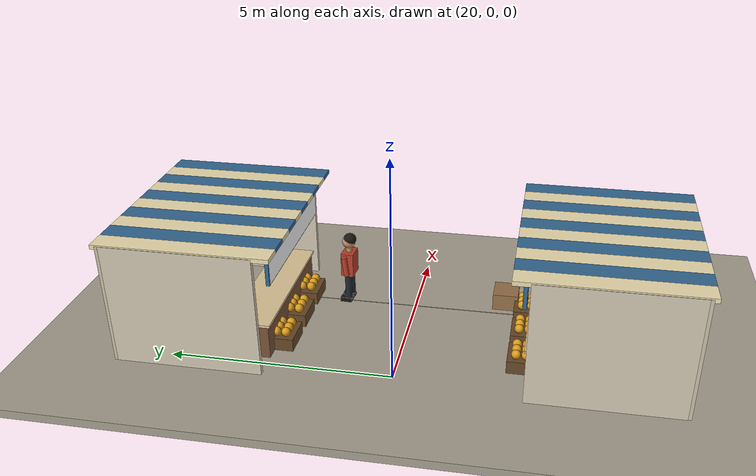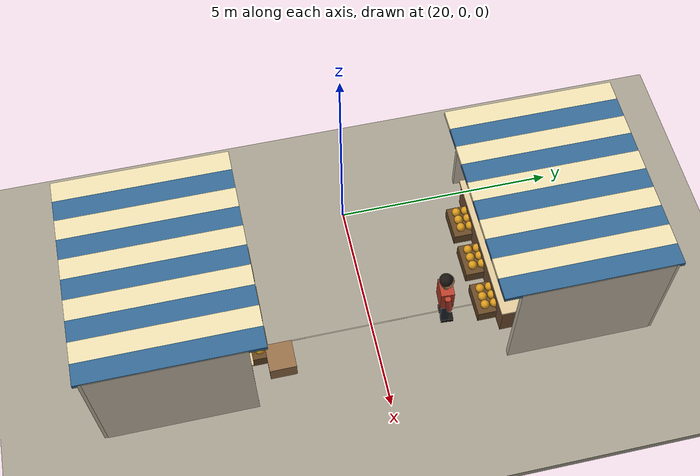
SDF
<sdf version="1.10">
 <world name="swan_market">
  <model name="ground">
   <static>true</static>
   <pose>15 0 -0.1 0 0 0</pose>
   <link name="body">
    <collision name="box_collision"><geometry><box><size>46 24 0.2</size></box></geometry></collision>
    <visual name="box_visual">
     <geometry><box><size>46 24 0.2</size></box></geometry>
     <material><ambient>0.64 0.61 0.55 1</ambient><diffuse>0.64 0.61 0.55 1</diffuse></material>
    </visual>
   </link>
  </model>
  <model name="paving_joint_23">
   <static>true</static>
   <pose>23 0 0.0045 0 0 0</pose>
   <link name="body">
    <visual name="box_visual">
     <geometry><box><size>0.025 5.2 0.001</size></box></geometry>
     <material><ambient>0.67 0.64 0.57 1</ambient><diffuse>0.67 0.64 0.57 1</diffuse></material>
    </visual>
   </link>
  </model>
  <model name="stall_02">
   <static>true</static>
   <pose>22 4.45 0 0 0 0</pose>
   <link name="body">
    <collision name="rear_collision">
     <pose>0 1.65 1.4 0 0 0</pose>
     <geometry><box><size>4.8 0.15 2.8</size></box></geometry>
    </collision>
    <visual name="rear_visual">
     <pose>0 1.65 1.4 0 0 0</pose>
     <geometry><box><size>4.8 0.15 2.8</size></box></geometry>
     <material><ambient>0.78 0.74 0.65 1</ambient><diffuse>0.78 0.74 0.65 1</diffuse></material>
    </visual>
    <collision name="side_-2.35_collision">
     <pose>-2.35 0 1.4 0 0 0</pose>
     <geometry><box><size>0.12 3.3 2.8</size></box></geometry>
    </collision>
    <visual name="side_-2.35_visual">
     <pose>-2.35 0 1.4 0 0 0</pose>
     <geometry><box><size>0.12 3.3 2.8</size></box></geometry>
     <material><ambient>0.81 0.77 0.69 1</ambient><diffuse>0.81 0.77 0.69 1</diffuse></material>
    </visual>
    <collision name="side_2.35_collision">
     <pose>2.35 0 1.4 0 0 0</pose>
     <geometry><box><size>0.12 3.3 2.8</size></box></geometry>
    </collision>
    <visual name="side_2.35_visual">
     <pose>2.35 0 1.4 0 0 0</pose>
     <geometry><box><size>0.12 3.3 2.8</size></box></geometry>
     <material><ambient>0.81 0.77 0.69 1</ambient><diffuse>0.81 0.77 0.69 1</diffuse></material>
    </visual>
    <collision name="counter_collision">
     <pose>0 -1.22 0.4 0 0 0</pose>
     <geometry><box><size>3.5 0.85 0.8</size></box></geometry>
    </collision>
    <visual name="counter_visual">
     <pose>0 -1.22 0.4 0 0 0</pose>
     <geometry><box><size>3.5 0.85 0.8</size></box></geometry>
     <material><ambient>0.47 0.32 0.21 1</ambient><diffuse>0.47 0.32 0.21 1</diffuse></material>
    </visual>
    <collision name="counter_top_collision">
     <pose>0 -1.22 0.83 0 0 0</pose>
     <geometry><box><size>3.6 0.95 0.06</size></box></geometry>
    </collision>
    <visual name="counter_top_visual">
     <pose>0 -1.22 0.83 0 0 0</pose>
     <geometry><box><size>3.6 0.95 0.06</size></box></geometry>
     <material><ambient>0.86 0.77 0.59 1</ambient><diffuse>0.86 0.77 0.59 1</diffuse></material>
    </visual>
    <collision name="awning_0_collision">
     <pose>-2.16 -0.1 2.78 0 0 0</pose>
     <geometry><box><size>0.48 3.85 0.1</size></box></geometry>
    </collision>
    <visual name="awning_0_visual">
     <pose>-2.16 -0.1 2.78 0 0 0</pose>
     <geometry><box><size>0.48 3.85 0.1</size></box></geometry>
     <material><ambient>0.92 0.86 0.68 1</ambient><diffuse>0.92 0.86 0.68 1</diffuse></material>
    </visual>
    <collision name="awning_1_collision">
     <pose>-1.68 -0.1 2.78 0 0 0</pose>
     <geometry><box><size>0.48 3.85 0.1</size></box></geometry>
    </collision>
    <visual name="awning_1_visual">
     <pose>-1.68 -0.1 2.78 0 0 0</pose>
     <geometry><box><size>0.48 3.85 0.1</size></box></geometry>
     <material><ambient>0.2 0.4 0.57 1</ambient><diffuse>0.2 0.4 0.57 1</diffuse></material>
    </visual>
    <collision name="awning_2_collision">
     <pose>-1.2 -0.1 2.78 0 0 0</pose>
     <geometry><box><size>0.48 3.85 0.1</size></box></geometry>
    </collision>
    <visual name="awning_2_visual">
     <pose>-1.2 -0.1 2.78 0 0 0</pose>
     <geometry><box><size>0.48 3.85 0.1</size></box></geometry>
     <material><ambient>0.92 0.86 0.68 1</ambient><diffuse>0.92 0.86 0.68 1</diffuse></material>
    </visual>
    <collision name="awning_3_collision">
     <pose>-0.72 -0.1 2.78 0 0 0</pose>
     <geometry><box><size>0.48 3.85 0.1</size></box></geometry>
    </collision>
    <visual name="awning_3_visual">
     <pose>-0.72 -0.1 2.78 0 0 0</pose>
     <geometry><box><size>0.48 3.85 0.1</size></box></geometry>
     <material><ambient>0.2 0.4 0.57 1</ambient><diffuse>0.2 0.4 0.57 1</diffuse></material>
    </visual>
    <collision name="awning_4_collision">
     <pose>-0.24 -0.1 2.78 0 0 0</pose>
     <geometry><box><size>0.48 3.85 0.1</size></box></geometry>
    </collision>
    <visual name="awning_4_visual">
     <pose>-0.24 -0.1 2.78 0 0 0</pose>
     <geometry><box><size>0.48 3.85 0.1</size></box></geometry>
     <material><ambient>0.92 0.86 0.68 1</ambient><diffuse>0.92 0.86 0.68 1</diffuse></material>
    </visual>
    <collision name="awning_5_collision">
     <pose>0.24 -0.1 2.78 0 0 0</pose>
     <geometry><box><size>0.48 3.85 0.1</size></box></geometry>
    </collision>
    <visual name="awning_5_visual">
     <pose>0.24 -0.1 2.78 0 0 0</pose>
     <geometry><box><size>0.48 3.85 0.1</size></box></geometry>
     <material><ambient>0.2 0.4 0.57 1</ambient><diffuse>0.2 0.4 0.57 1</diffuse></material>
    </visual>
    <collision name="awning_6_collision">
     <pose>0.72 -0.1 2.78 0 0 0</pose>
     <geometry><box><size>0.48 3.85 0.1</size></box></geometry>
    </collision>
    <visual name="awning_6_visual">
     <pose>0.72 -0.1 2.78 0 0 0</pose>
     <geometry><box><size>0.48 3.85 0.1</size></box></geometry>
     <material><ambient>0.92 0.86 0.68 1</ambient><diffuse>0.92 0.86 0.68 1</diffuse></material>
    </visual>
    <collision name="awning_7_collision">
     <pose>1.2 -0.1 2.78 0 0 0</pose>
     <geometry><box><size>0.48 3.85 0.1</size></box></geometry>
    </collision>
    <visual name="awning_7_visual">
     <pose>1.2 -0.1 2.78 0 0 0</pose>
     <geometry><box><size>0.48 3.85 0.1</size></box></geometry>
     <material><ambient>0.2 0.4 0.57 1</ambient><diffuse>0.2 0.4 0.57 1</diffuse></material>
    </visual>
    <collision name="awning_8_collision">
     <pose>1.68 -0.1 2.78 0 0 0</pose>
     <geometry><box><size>0.48 3.85 0.1</size></box></geometry>
    </collision>
    <visual name="awning_8_visual">
     <pose>1.68 -0.1 2.78 0 0 0</pose>
     <geometry><box><size>0.48 3.85 0.1</size></box></geometry>
     <material><ambient>0.92 0.86 0.68 1</ambient><diffuse>0.92 0.86 0.68 1</diffuse></material>
    </visual>
    <collision name="awning_9_collision">
     <pose>2.16 -0.1 2.78 0 0 0</pose>
     <geometry><box><size>0.48 3.85 0.1</size></box></geometry>
    </collision>
    <visual name="awning_9_visual">
     <pose>2.16 -0.1 2.78 0 0 0</pose>
     <geometry><box><size>0.48 3.85 0.1</size></box></geometry>
     <material><ambient>0.2 0.4 0.57 1</ambient><diffuse>0.2 0.4 0.57 1</diffuse></material>
    </visual>
    <collision name="crate_-1_collision">
     <pose>-1.04 -1.77 0.15 0 0 0</pose>
     <geometry><box><size>0.78 0.6 0.3</size></box></geometry>
    </collision>
    <visual name="crate_-1_visual">
     <pose>-1.04 -1.77 0.15 0 0 0</pose>
     <geometry><box><size>0.78 0.6 0.3</size></box></geometry>
     <material><ambient>0.4 0.28 0.15 1</ambient><diffuse>0.4 0.28 0.15 1</diffuse></material>
    </visual>
    <visual name="produce_-1_0_visual">
     <pose>-1.25 -1.88 0.39 0 0 0</pose>
     <geometry><sphere><radius>0.105</radius></sphere></geometry>
     <material><ambient>0.84 0.59 0.1 1</ambient><diffuse>0.84 0.59 0.1 1</diffuse></material>
    </visual>
    <visual name="produce_-1_1_visual">
     <pose>-1.04 -1.88 0.39 0 0 0</pose>
     <geometry><sphere><radius>0.105</radius></sphere></geometry>
     <material><ambient>0.84 0.59 0.1 1</ambient><diffuse>0.84 0.59 0.1 1</diffuse></material>
    </visual>
    <visual name="produce_-1_2_visual">
     <pose>-0.83 -1.88 0.39 0 0 0</pose>
     <geometry><sphere><radius>0.105</radius></sphere></geometry>
     <material><ambient>0.84 0.59 0.1 1</ambient><diffuse>0.84 0.59 0.1 1</diffuse></material>
    </visual>
    <visual name="produce_-1_3_visual">
     <pose>-1.25 -1.66 0.39 0 0 0</pose>
     <geometry><sphere><radius>0.105</radius></sphere></geometry>
     <material><ambient>0.84 0.59 0.1 1</ambient><diffuse>0.84 0.59 0.1 1</diffuse></material>
    </visual>
    <visual name="produce_-1_4_visual">
     <pose>-1.04 -1.66 0.39 0 0 0</pose>
     <geometry><sphere><radius>0.105</radius></sphere></geometry>
     <material><ambient>0.84 0.59 0.1 1</ambient><diffuse>0.84 0.59 0.1 1</diffuse></material>
    </visual>
    <visual name="produce_-1_5_visual">
     <pose>-0.83 -1.66 0.39 0 0 0</pose>
     <geometry><sphere><radius>0.105</radius></sphere></geometry>
     <material><ambient>0.84 0.59 0.1 1</ambient><diffuse>0.84 0.59 0.1 1</diffuse></material>
    </visual>
    <collision name="crate_0_collision">
     <pose>0 -1.77 0.15 0 0 0</pose>
     <geometry><box><size>0.78 0.6 0.3</size></box></geometry>
    </collision>
    <visual name="crate_0_visual">
     <pose>0 -1.77 0.15 0 0 0</pose>
     <geometry><box><size>0.78 0.6 0.3</size></box></geometry>
     <material><ambient>0.4 0.28 0.15 1</ambient><diffuse>0.4 0.28 0.15 1</diffuse></material>
    </visual>
    <visual name="produce_0_0_visual">
     <pose>-0.21 -1.88 0.39 0 0 0</pose>
     <geometry><sphere><radius>0.105</radius></sphere></geometry>
     <material><ambient>0.84 0.59 0.1 1</ambient><diffuse>0.84 0.59 0.1 1</diffuse></material>
    </visual>
    <visual name="produce_0_1_visual">
     <pose>0 -1.88 0.39 0 0 0</pose>
     <geometry><sphere><radius>0.105</radius></sphere></geometry>
     <material><ambient>0.84 0.59 0.1 1</ambient><diffuse>0.84 0.59 0.1 1</diffuse></material>
    </visual>
    <visual name="produce_0_2_visual">
     <pose>0.21 -1.88 0.39 0 0 0</pose>
     <geometry><sphere><radius>0.105</radius></sphere></geometry>
     <material><ambient>0.84 0.59 0.1 1</ambient><diffuse>0.84 0.59 0.1 1</diffuse></material>
    </visual>
    <visual name="produce_0_3_visual">
     <pose>-0.21 -1.66 0.39 0 0 0</pose>
     <geometry><sphere><radius>0.105</radius></sphere></geometry>
     <material><ambient>0.84 0.59 0.1 1</ambient><diffuse>0.84 0.59 0.1 1</diffuse></material>
    </visual>
    <visual name="produce_0_4_visual">
     <pose>0 -1.66 0.39 0 0 0</pose>
     <geometry><sphere><radius>0.105</radius></sphere></geometry>
     <material><ambient>0.84 0.59 0.1 1</ambient><diffuse>0.84 0.59 0.1 1</diffuse></material>
    </visual>
    <visual name="produce_0_5_visual">
     <pose>0.21 -1.66 0.39 0 0 0</pose>
     <geometry><sphere><radius>0.105</radius></sphere></geometry>
     <material><ambient>0.84 0.59 0.1 1</ambient><diffuse>0.84 0.59 0.1 1</diffuse></material>
    </visual>
    <collision name="crate_1_collision">
     <pose>1.04 -1.77 0.15 0 0 0</pose>
     <geometry><box><size>0.78 0.6 0.3</size></box></geometry>
    </collision>
    <visual name="crate_1_visual">
     <pose>1.04 -1.77 0.15 0 0 0</pose>
     <geometry><box><size>0.78 0.6 0.3</size></box></geometry>
     <material><ambient>0.4 0.28 0.15 1</ambient><diffuse>0.4 0.28 0.15 1</diffuse></material>
    </visual>
    <visual name="produce_1_0_visual">
     <pose>0.83 -1.88 0.39 0 0 0</pose>
     <geometry><sphere><radius>0.105</radius></sphere></geometry>
     <material><ambient>0.84 0.59 0.1 1</ambient><diffuse>0.84 0.59 0.1 1</diffuse></material>
    </visual>
    <visual name="produce_1_1_visual">
     <pose>1.04 -1.88 0.39 0 0 0</pose>
     <geometry><sphere><radius>0.105</radius></sphere></geometry>
     <material><ambient>0.84 0.59 0.1 1</ambient><diffuse>0.84 0.59 0.1 1</diffuse></material>
    </visual>
    <visual name="produce_1_2_visual">
     <pose>1.25 -1.88 0.39 0 0 0</pose>
     <geometry><sphere><radius>0.105</radius></sphere></geometry>
     <material><ambient>0.84 0.59 0.1 1</ambient><diffuse>0.84 0.59 0.1 1</diffuse></material>
    </visual>
    <visual name="produce_1_3_visual">
     <pose>0.83 -1.66 0.39 0 0 0</pose>
     <geometry><sphere><radius>0.105</radius></sphere></geometry>
     <material><ambient>0.84 0.59 0.1 1</ambient><diffuse>0.84 0.59 0.1 1</diffuse></material>
    </visual>
    <visual name="produce_1_4_visual">
     <pose>1.04 -1.66 0.39 0 0 0</pose>
     <geometry><sphere><radius>0.105</radius></sphere></geometry>
     <material><ambient>0.84 0.59 0.1 1</ambient><diffuse>0.84 0.59 0.1 1</diffuse></material>
    </visual>
    <visual name="produce_1_5_visual">
     <pose>1.25 -1.66 0.39 0 0 0</pose>
     <geometry><sphere><radius>0.105</radius></sphere></geometry>
     <material><ambient>0.84 0.59 0.1 1</ambient><diffuse>0.84 0.59 0.1 1</diffuse></material>
    </visual>
   </link>
  </model>
  <model name="signboard_2">
   <static>true</static>
   <pose>22 2.69 2.24 0 0 0</pose>
   <link name="body">
    <collision name="box_collision"><geometry><box><size>3.65 0.08 0.72</size></box></geometry></collision>
    <visual name="box_visual">
     <geometry><box><size>3.65 0.08 0.72</size></box></geometry>
     <material><ambient>0.2 0.4 0.57 1</ambient><diffuse>0.2 0.4 0.57 1</diffuse></material>
    </visual>
   </link>
  </model>
  <model name="sign_shop_2">
   <static>true</static>
   <pose>22 2.642 2.24 0 0 0</pose>
   <link name="body">
    <visual name="lettering">
     <geometry>
      <mesh><uri>model://swan_market_assets/meshes/shop_2.dae</uri><scale>3.6 1 0.675</scale></mesh>
     </geometry>
     <material>
      <ambient>1 1 1 1</ambient>
      <diffuse>1 1 1 1</diffuse>
      <emissive>0 0 0 1</emissive>
      <pbr>
       <metal>
        <albedo_map>model://swan_market_assets/materials/textures/shop_2.png</albedo_map>
        <metalness>0</metalness>
        <roughness>1</roughness>
       </metal>
      </pbr>
     </material>
    </visual>
   </link>
  </model>
  <model name="stall_06">
   <static>true</static>
   <pose>22 -4.45 0 0 0 0</pose>
   <link name="body">
    <collision name="rear_collision">
     <pose>0 -1.65 1.4 0 0 0</pose>
     <geometry><box><size>4.8 0.15 2.8</size></box></geometry>
    </collision>
    <visual name="rear_visual">
     <pose>0 -1.65 1.4 0 0 0</pose>
     <geometry><box><size>4.8 0.15 2.8</size></box></geometry>
     <material><ambient>0.78 0.74 0.65 1</ambient><diffuse>0.78 0.74 0.65 1</diffuse></material>
    </visual>
    <collision name="side_-2.35_collision">
     <pose>-2.35 0 1.4 0 0 0</pose>
     <geometry><box><size>0.12 3.3 2.8</size></box></geometry>
    </collision>
    <visual name="side_-2.35_visual">
     <pose>-2.35 0 1.4 0 0 0</pose>
     <geometry><box><size>0.12 3.3 2.8</size></box></geometry>
     <material><ambient>0.81 0.77 0.69 1</ambient><diffuse>0.81 0.77 0.69 1</diffuse></material>
    </visual>
    <collision name="side_2.35_collision">
     <pose>2.35 0 1.4 0 0 0</pose>
     <geometry><box><size>0.12 3.3 2.8</size></box></geometry>
    </collision>
    <visual name="side_2.35_visual">
     <pose>2.35 0 1.4 0 0 0</pose>
     <geometry><box><size>0.12 3.3 2.8</size></box></geometry>
     <material><ambient>0.81 0.77 0.69 1</ambient><diffuse>0.81 0.77 0.69 1</diffuse></material>
    </visual>
    <collision name="counter_collision">
     <pose>0 1.22 0.4 0 0 0</pose>
     <geometry><box><size>3.5 0.85 0.8</size></box></geometry>
    </collision>
    <visual name="counter_visual">
     <pose>0 1.22 0.4 0 0 0</pose>
     <geometry><box><size>3.5 0.85 0.8</size></box></geometry>
     <material><ambient>0.47 0.32 0.21 1</ambient><diffuse>0.47 0.32 0.21 1</diffuse></material>
    </visual>
    <collision name="counter_top_collision">
     <pose>0 1.22 0.83 0 0 0</pose>
     <geometry><box><size>3.6 0.95 0.06</size></box></geometry>
    </collision>
    <visual name="counter_top_visual">
     <pose>0 1.22 0.83 0 0 0</pose>
     <geometry><box><size>3.6 0.95 0.06</size></box></geometry>
     <material><ambient>0.86 0.77 0.59 1</ambient><diffuse>0.86 0.77 0.59 1</diffuse></material>
    </visual>
    <collision name="awning_0_collision">
     <pose>-2.16 0.1 2.78 0 0 0</pose>
     <geometry><box><size>0.48 3.85 0.1</size></box></geometry>
    </collision>
    <visual name="awning_0_visual">
     <pose>-2.16 0.1 2.78 0 0 0</pose>
     <geometry><box><size>0.48 3.85 0.1</size></box></geometry>
     <material><ambient>0.92 0.86 0.68 1</ambient><diffuse>0.92 0.86 0.68 1</diffuse></material>
    </visual>
    <collision name="awning_1_collision">
     <pose>-1.68 0.1 2.78 0 0 0</pose>
     <geometry><box><size>0.48 3.85 0.1</size></box></geometry>
    </collision>
    <visual name="awning_1_visual">
     <pose>-1.68 0.1 2.78 0 0 0</pose>
     <geometry><box><size>0.48 3.85 0.1</size></box></geometry>
     <material><ambient>0.2 0.4 0.57 1</ambient><diffuse>0.2 0.4 0.57 1</diffuse></material>
    </visual>
    <collision name="awning_2_collision">
     <pose>-1.2 0.1 2.78 0 0 0</pose>
     <geometry><box><size>0.48 3.85 0.1</size></box></geometry>
    </collision>
    <visual name="awning_2_visual">
     <pose>-1.2 0.1 2.78 0 0 0</pose>
     <geometry><box><size>0.48 3.85 0.1</size></box></geometry>
     <material><ambient>0.92 0.86 0.68 1</ambient><diffuse>0.92 0.86 0.68 1</diffuse></material>
    </visual>
    <collision name="awning_3_collision">
     <pose>-0.72 0.1 2.78 0 0 0</pose>
     <geometry><box><size>0.48 3.85 0.1</size></box></geometry>
    </collision>
    <visual name="awning_3_visual">
     <pose>-0.72 0.1 2.78 0 0 0</pose>
     <geometry><box><size>0.48 3.85 0.1</size></box></geometry>
     <material><ambient>0.2 0.4 0.57 1</ambient><diffuse>0.2 0.4 0.57 1</diffuse></material>
    </visual>
    <collision name="awning_4_collision">
     <pose>-0.24 0.1 2.78 0 0 0</pose>
     <geometry><box><size>0.48 3.85 0.1</size></box></geometry>
    </collision>
    <visual name="awning_4_visual">
     <pose>-0.24 0.1 2.78 0 0 0</pose>
     <geometry><box><size>0.48 3.85 0.1</size></box></geometry>
     <material><ambient>0.92 0.86 0.68 1</ambient><diffuse>0.92 0.86 0.68 1</diffuse></material>
    </visual>
    <collision name="awning_5_collision">
     <pose>0.24 0.1 2.78 0 0 0</pose>
     <geometry><box><size>0.48 3.85 0.1</size></box></geometry>
    </collision>
    <visual name="awning_5_visual">
     <pose>0.24 0.1 2.78 0 0 0</pose>
     <geometry><box><size>0.48 3.85 0.1</size></box></geometry>
     <material><ambient>0.2 0.4 0.57 1</ambient><diffuse>0.2 0.4 0.57 1</diffuse></material>
    </visual>
    <collision name="awning_6_collision">
     <pose>0.72 0.1 2.78 0 0 0</pose>
     <geometry><box><size>0.48 3.85 0.1</size></box></geometry>
    </collision>
    <visual name="awning_6_visual">
     <pose>0.72 0.1 2.78 0 0 0</pose>
     <geometry><box><size>0.48 3.85 0.1</size></box></geometry>
     <material><ambient>0.92 0.86 0.68 1</ambient><diffuse>0.92 0.86 0.68 1</diffuse></material>
    </visual>
    <collision name="awning_7_collision">
     <pose>1.2 0.1 2.78 0 0 0</pose>
     <geometry><box><size>0.48 3.85 0.1</size></box></geometry>
    </collision>
    <visual name="awning_7_visual">
     <pose>1.2 0.1 2.78 0 0 0</pose>
     <geometry><box><size>0.48 3.85 0.1</size></box></geometry>
     <material><ambient>0.2 0.4 0.57 1</ambient><diffuse>0.2 0.4 0.57 1</diffuse></material>
    </visual>
    <collision name="awning_8_collision">
     <pose>1.68 0.1 2.78 0 0 0</pose>
     <geometry><box><size>0.48 3.85 0.1</size></box></geometry>
    </collision>
    <visual name="awning_8_visual">
     <pose>1.68 0.1 2.78 0 0 0</pose>
     <geometry><box><size>0.48 3.85 0.1</size></box></geometry>
     <material><ambient>0.92 0.86 0.68 1</ambient><diffuse>0.92 0.86 0.68 1</diffuse></material>
    </visual>
    <collision name="awning_9_collision">
     <pose>2.16 0.1 2.78 0 0 0</pose>
     <geometry><box><size>0.48 3.85 0.1</size></box></geometry>
    </collision>
    <visual name="awning_9_visual">
     <pose>2.16 0.1 2.78 0 0 0</pose>
     <geometry><box><size>0.48 3.85 0.1</size></box></geometry>
     <material><ambient>0.2 0.4 0.57 1</ambient><diffuse>0.2 0.4 0.57 1</diffuse></material>
    </visual>
    <collision name="crate_-1_collision">
     <pose>-1.04 1.77 0.15 0 0 0</pose>
     <geometry><box><size>0.78 0.6 0.3</size></box></geometry>
    </collision>
    <visual name="crate_-1_visual">
     <pose>-1.04 1.77 0.15 0 0 0</pose>
     <geometry><box><size>0.78 0.6 0.3</size></box></geometry>
     <material><ambient>0.4 0.28 0.15 1</ambient><diffuse>0.4 0.28 0.15 1</diffuse></material>
    </visual>
    <visual name="produce_-1_0_visual">
     <pose>-1.25 1.66 0.39 0 0 0</pose>
     <geometry><sphere><radius>0.105</radius></sphere></geometry>
     <material><ambient>0.84 0.59 0.1 1</ambient><diffuse>0.84 0.59 0.1 1</diffuse></material>
    </visual>
    <visual name="produce_-1_1_visual">
     <pose>-1.04 1.66 0.39 0 0 0</pose>
     <geometry><sphere><radius>0.105</radius></sphere></geometry>
     <material><ambient>0.84 0.59 0.1 1</ambient><diffuse>0.84 0.59 0.1 1</diffuse></material>
    </visual>
    <visual name="produce_-1_2_visual">
     <pose>-0.83 1.66 0.39 0 0 0</pose>
     <geometry><sphere><radius>0.105</radius></sphere></geometry>
     <material><ambient>0.84 0.59 0.1 1</ambient><diffuse>0.84 0.59 0.1 1</diffuse></material>
    </visual>
    <visual name="produce_-1_3_visual">
     <pose>-1.25 1.88 0.39 0 0 0</pose>
     <geometry><sphere><radius>0.105</radius></sphere></geometry>
     <material><ambient>0.84 0.59 0.1 1</ambient><diffuse>0.84 0.59 0.1 1</diffuse></material>
    </visual>
    <visual name="produce_-1_4_visual">
     <pose>-1.04 1.88 0.39 0 0 0</pose>
     <geometry><sphere><radius>0.105</radius></sphere></geometry>
     <material><ambient>0.84 0.59 0.1 1</ambient><diffuse>0.84 0.59 0.1 1</diffuse></material>
    </visual>
    <visual name="produce_-1_5_visual">
     <pose>-0.83 1.88 0.39 0 0 0</pose>
     <geometry><sphere><radius>0.105</radius></sphere></geometry>
     <material><ambient>0.84 0.59 0.1 1</ambient><diffuse>0.84 0.59 0.1 1</diffuse></material>
    </visual>
    <collision name="crate_0_collision">
     <pose>0 1.77 0.15 0 0 0</pose>
     <geometry><box><size>0.78 0.6 0.3</size></box></geometry>
    </collision>
    <visual name="crate_0_visual">
     <pose>0 1.77 0.15 0 0 0</pose>
     <geometry><box><size>0.78 0.6 0.3</size></box></geometry>
     <material><ambient>0.4 0.28 0.15 1</ambient><diffuse>0.4 0.28 0.15 1</diffuse></material>
    </visual>
    <visual name="produce_0_0_visual">
     <pose>-0.21 1.66 0.39 0 0 0</pose>
     <geometry><sphere><radius>0.105</radius></sphere></geometry>
     <material><ambient>0.84 0.59 0.1 1</ambient><diffuse>0.84 0.59 0.1 1</diffuse></material>
    </visual>
    <visual name="produce_0_1_visual">
     <pose>0 1.66 0.39 0 0 0</pose>
     <geometry><sphere><radius>0.105</radius></sphere></geometry>
     <material><ambient>0.84 0.59 0.1 1</ambient><diffuse>0.84 0.59 0.1 1</diffuse></material>
    </visual>
    <visual name="produce_0_2_visual">
     <pose>0.21 1.66 0.39 0 0 0</pose>
     <geometry><sphere><radius>0.105</radius></sphere></geometry>
     <material><ambient>0.84 0.59 0.1 1</ambient><diffuse>0.84 0.59 0.1 1</diffuse></material>
    </visual>
    <visual name="produce_0_3_visual">
     <pose>-0.21 1.88 0.39 0 0 0</pose>
     <geometry><sphere><radius>0.105</radius></sphere></geometry>
     <material><ambient>0.84 0.59 0.1 1</ambient><diffuse>0.84 0.59 0.1 1</diffuse></material>
    </visual>
    <visual name="produce_0_4_visual">
     <pose>0 1.88 0.39 0 0 0</pose>
     <geometry><sphere><radius>0.105</radius></sphere></geometry>
     <material><ambient>0.84 0.59 0.1 1</ambient><diffuse>0.84 0.59 0.1 1</diffuse></material>
    </visual>
    <visual name="produce_0_5_visual">
     <pose>0.21 1.88 0.39 0 0 0</pose>
     <geometry><sphere><radius>0.105</radius></sphere></geometry>
     <material><ambient>0.84 0.59 0.1 1</ambient><diffuse>0.84 0.59 0.1 1</diffuse></material>
    </visual>
    <collision name="crate_1_collision">
     <pose>1.04 1.77 0.15 0 0 0</pose>
     <geometry><box><size>0.78 0.6 0.3</size></box></geometry>
    </collision>
    <visual name="crate_1_visual">
     <pose>1.04 1.77 0.15 0 0 0</pose>
     <geometry><box><size>0.78 0.6 0.3</size></box></geometry>
     <material><ambient>0.4 0.28 0.15 1</ambient><diffuse>0.4 0.28 0.15 1</diffuse></material>
    </visual>
    <visual name="produce_1_0_visual">
     <pose>0.83 1.66 0.39 0 0 0</pose>
     <geometry><sphere><radius>0.105</radius></sphere></geometry>
     <material><ambient>0.84 0.59 0.1 1</ambient><diffuse>0.84 0.59 0.1 1</diffuse></material>
    </visual>
    <visual name="produce_1_1_visual">
     <pose>1.04 1.66 0.39 0 0 0</pose>
     <geometry><sphere><radius>0.105</radius></sphere></geometry>
     <material><ambient>0.84 0.59 0.1 1</ambient><diffuse>0.84 0.59 0.1 1</diffuse></material>
    </visual>
    <visual name="produce_1_2_visual">
     <pose>1.25 1.66 0.39 0 0 0</pose>
     <geometry><sphere><radius>0.105</radius></sphere></geometry>
     <material><ambient>0.84 0.59 0.1 1</ambient><diffuse>0.84 0.59 0.1 1</diffuse></material>
    </visual>
    <visual name="produce_1_3_visual">
     <pose>0.83 1.88 0.39 0 0 0</pose>
     <geometry><sphere><radius>0.105</radius></sphere></geometry>
     <material><ambient>0.84 0.59 0.1 1</ambient><diffuse>0.84 0.59 0.1 1</diffuse></material>
    </visual>
    <visual name="produce_1_4_visual">
     <pose>1.04 1.88 0.39 0 0 0</pose>
     <geometry><sphere><radius>0.105</radius></sphere></geometry>
     <material><ambient>0.84 0.59 0.1 1</ambient><diffuse>0.84 0.59 0.1 1</diffuse></material>
    </visual>
    <visual name="produce_1_5_visual">
     <pose>1.25 1.88 0.39 0 0 0</pose>
     <geometry><sphere><radius>0.105</radius></sphere></geometry>
     <material><ambient>0.84 0.59 0.1 1</ambient><diffuse>0.84 0.59 0.1 1</diffuse></material>
    </visual>
   </link>
  </model>
  <model name="signboard_6">
   <static>true</static>
   <pose>22 -2.69 2.24 0 0 0</pose>
   <link name="body">
    <collision name="box_collision"><geometry><box><size>3.65 0.08 0.72</size></box></geometry></collision>
    <visual name="box_visual">
     <geometry><box><size>3.65 0.08 0.72</size></box></geometry>
     <material><ambient>0.2 0.4 0.57 1</ambient><diffuse>0.2 0.4 0.57 1</diffuse></material>
    </visual>
   </link>
  </model>
  <model name="sign_shop_6">
   <static>true</static>
   <pose>22 -2.642 2.24 0 0 3.1416</pose>
   <link name="body">
    <visual name="lettering">
     <geometry>
      <mesh><uri>model://swan_market_assets/meshes/shop_6.dae</uri><scale>3.6 1 0.675</scale></mesh>
     </geometry>
     <material>
      <ambient>1 1 1 1</ambient>
      <diffuse>1 1 1 1</diffuse>
      <emissive>0 0 0 1</emissive>
      <pbr>
       <metal>
        <albedo_map>model://swan_market_assets/materials/textures/shop_6.png</albedo_map>
        <metalness>0</metalness>
        <roughness>1</roughness>
       </metal>
      </pbr>
     </material>
    </visual>
   </link>
  </model>
  <model name="vendor_2">
   <static>true</static>
   <pose>22 4.45 0 0 0 -1.5708</pose>
   <link name="body">
    <collision name="leg_-1_collision">
     <pose>0 -0.12 0.4 0 0 0</pose>
     <geometry><cylinder><radius>0.085</radius><length>0.68</length></cylinder></geometry>
    </collision>
    <visual name="leg_-1_visual">
     <pose>0 -0.12 0.4 0 0 0</pose>
     <geometry><cylinder><radius>0.085</radius><length>0.68</length></cylinder></geometry>
     <material><ambient>0.12 0.15 0.18 1</ambient><diffuse>0.12 0.15 0.18 1</diffuse></material>
    </visual>
    <collision name="shoe_-1_collision">
     <pose>0.06 -0.12 0.055 0 0 0</pose>
     <geometry><box><size>0.28 0.17 0.11</size></box></geometry>
    </collision>
    <visual name="shoe_-1_visual">
     <pose>0.06 -0.12 0.055 0 0 0</pose>
     <geometry><box><size>0.28 0.17 0.11</size></box></geometry>
     <material><ambient>0.08 0.07 0.06 1</ambient><diffuse>0.08 0.07 0.06 1</diffuse></material>
    </visual>
    <collision name="arm_-1_collision">
     <pose>0.02 -0.27 1.02 0 -0.12 0</pose>
     <geometry><cylinder><radius>0.068</radius><length>0.48</length></cylinder></geometry>
    </collision>
    <visual name="arm_-1_visual">
     <pose>0.02 -0.27 1.02 0 -0.12 0</pose>
     <geometry><cylinder><radius>0.068</radius><length>0.48</length></cylinder></geometry>
     <material><ambient>0.79 0.69 0.48 1</ambient><diffuse>0.79 0.69 0.48 1</diffuse></material>
    </visual>
    <collision name="leg_1_collision">
     <pose>0 0.12 0.4 0 0 0</pose>
     <geometry><cylinder><radius>0.085</radius><length>0.68</length></cylinder></geometry>
    </collision>
    <visual name="leg_1_visual">
     <pose>0 0.12 0.4 0 0 0</pose>
     <geometry><cylinder><radius>0.085</radius><length>0.68</length></cylinder></geometry>
     <material><ambient>0.12 0.15 0.18 1</ambient><diffuse>0.12 0.15 0.18 1</diffuse></material>
    </visual>
    <collision name="shoe_1_collision">
     <pose>0.06 0.12 0.055 0 0 0</pose>
     <geometry><box><size>0.28 0.17 0.11</size></box></geometry>
    </collision>
    <visual name="shoe_1_visual">
     <pose>0.06 0.12 0.055 0 0 0</pose>
     <geometry><box><size>0.28 0.17 0.11</size></box></geometry>
     <material><ambient>0.08 0.07 0.06 1</ambient><diffuse>0.08 0.07 0.06 1</diffuse></material>
    </visual>
    <collision name="arm_1_collision">
     <pose>0.02 0.27 1.02 0 0.12 0</pose>
     <geometry><cylinder><radius>0.068</radius><length>0.48</length></cylinder></geometry>
    </collision>
    <visual name="arm_1_visual">
     <pose>0.02 0.27 1.02 0 0.12 0</pose>
     <geometry><cylinder><radius>0.068</radius><length>0.48</length></cylinder></geometry>
     <material><ambient>0.79 0.69 0.48 1</ambient><diffuse>0.79 0.69 0.48 1</diffuse></material>
    </visual>
    <collision name="torso_collision">
     <pose>0 0 1.02 0 0 0</pose>
     <geometry><box><size>0.3 0.43 0.58</size></box></geometry>
    </collision>
    <visual name="torso_visual">
     <pose>0 0 1.02 0 0 0</pose>
     <geometry><box><size>0.3 0.43 0.58</size></box></geometry>
     <material><ambient>0.79 0.69 0.48 1</ambient><diffuse>0.79 0.69 0.48 1</diffuse></material>
    </visual>
    <visual name="neck_visual">
     <pose>0 0 1.37 0 0 0</pose>
     <geometry><cylinder><radius>0.07</radius><length>0.13</length></cylinder></geometry>
     <material><ambient>0.77 0.56 0.4 1</ambient><diffuse>0.77 0.56 0.4 1</diffuse></material>
    </visual>
    <collision name="head_collision">
     <pose>0 0 1.57 0 0 0</pose>
     <geometry><sphere><radius>0.16</radius></sphere></geometry>
    </collision>
    <visual name="head_visual">
     <pose>0 0 1.57 0 0 0</pose>
     <geometry><sphere><radius>0.16</radius></sphere></geometry>
     <material><ambient>0.77 0.56 0.4 1</ambient><diffuse>0.77 0.56 0.4 1</diffuse></material>
    </visual>
    <visual name="hair_visual">
     <pose>-0.025 0 1.63 0 0 0</pose>
     <geometry><sphere><radius>0.155</radius></sphere></geometry>
     <material><ambient>0.1 0.08 0.06 1</ambient><diffuse>0.1 0.08 0.06 1</diffuse></material>
    </visual>
   </link>
  </model>
  <model name="stock_stack_2_0">
   <static>true</static>
   <pose>23.5 -2.15 0.2 0 0 0</pose>
   <link name="body">
    <collision name="box_collision"><geometry><box><size>0.65 0.6 0.4</size></box></geometry></collision>
    <visual name="box_visual">
     <geometry><box><size>0.65 0.6 0.4</size></box></geometry>
     <material><ambient>0.58 0.43 0.28 1</ambient><diffuse>0.58 0.43 0.28 1</diffuse></material>
    </visual>
   </link>
  </model>
  <model name="crowd_08">
   <static>true</static>
   <pose>23.1 1.65 0 0 0 1.5</pose>
   <link name="body">
    <collision name="leg_-1_collision">
     <pose>0 -0.12 0.4 0 0 0</pose>
     <geometry><cylinder><radius>0.085</radius><length>0.68</length></cylinder></geometry>
    </collision>
    <visual name="leg_-1_visual">
     <pose>0 -0.12 0.4 0 0 0</pose>
     <geometry><cylinder><radius>0.085</radius><length>0.68</length></cylinder></geometry>
     <material><ambient>0.12 0.15 0.18 1</ambient><diffuse>0.12 0.15 0.18 1</diffuse></material>
    </visual>
    <collision name="shoe_-1_collision">
     <pose>0.06 -0.12 0.055 0 0 0</pose>
     <geometry><box><size>0.28 0.17 0.11</size></box></geometry>
    </collision>
    <visual name="shoe_-1_visual">
     <pose>0.06 -0.12 0.055 0 0 0</pose>
     <geometry><box><size>0.28 0.17 0.11</size></box></geometry>
     <material><ambient>0.08 0.07 0.06 1</ambient><diffuse>0.08 0.07 0.06 1</diffuse></material>
    </visual>
    <collision name="arm_-1_collision">
     <pose>0.02 -0.27 1.02 0 -0.12 0</pose>
     <geometry><cylinder><radius>0.068</radius><length>0.48</length></cylinder></geometry>
    </collision>
    <visual name="arm_-1_visual">
     <pose>0.02 -0.27 1.02 0 -0.12 0</pose>
     <geometry><cylinder><radius>0.068</radius><length>0.48</length></cylinder></geometry>
     <material><ambient>0.72 0.24 0.16 1</ambient><diffuse>0.72 0.24 0.16 1</diffuse></material>
    </visual>
    <collision name="leg_1_collision">
     <pose>0 0.12 0.4 0 0 0</pose>
     <geometry><cylinder><radius>0.085</radius><length>0.68</length></cylinder></geometry>
    </collision>
    <visual name="leg_1_visual">
     <pose>0 0.12 0.4 0 0 0</pose>
     <geometry><cylinder><radius>0.085</radius><length>0.68</length></cylinder></geometry>
     <material><ambient>0.12 0.15 0.18 1</ambient><diffuse>0.12 0.15 0.18 1</diffuse></material>
    </visual>
    <collision name="shoe_1_collision">
     <pose>0.06 0.12 0.055 0 0 0</pose>
     <geometry><box><size>0.28 0.17 0.11</size></box></geometry>
    </collision>
    <visual name="shoe_1_visual">
     <pose>0.06 0.12 0.055 0 0 0</pose>
     <geometry><box><size>0.28 0.17 0.11</size></box></geometry>
     <material><ambient>0.08 0.07 0.06 1</ambient><diffuse>0.08 0.07 0.06 1</diffuse></material>
    </visual>
    <collision name="arm_1_collision">
     <pose>0.02 0.27 1.02 0 0.12 0</pose>
     <geometry><cylinder><radius>0.068</radius><length>0.48</length></cylinder></geometry>
    </collision>
    <visual name="arm_1_visual">
     <pose>0.02 0.27 1.02 0 0.12 0</pose>
     <geometry><cylinder><radius>0.068</radius><length>0.48</length></cylinder></geometry>
     <material><ambient>0.72 0.24 0.16 1</ambient><diffuse>0.72 0.24 0.16 1</diffuse></material>
    </visual>
    <collision name="torso_collision">
     <pose>0 0 1.02 0 0 0</pose>
     <geometry><box><size>0.3 0.43 0.58</size></box></geometry>
    </collision>
    <visual name="torso_visual">
     <pose>0 0 1.02 0 0 0</pose>
     <geometry><box><size>0.3 0.43 0.58</size></box></geometry>
     <material><ambient>0.72 0.24 0.16 1</ambient><diffuse>0.72 0.24 0.16 1</diffuse></material>
    </visual>
    <visual name="neck_visual">
     <pose>0 0 1.37 0 0 0</pose>
     <geometry><cylinder><radius>0.07</radius><length>0.13</length></cylinder></geometry>
     <material><ambient>0.77 0.56 0.4 1</ambient><diffuse>0.77 0.56 0.4 1</diffuse></material>
    </visual>
    <collision name="head_collision">
     <pose>0 0 1.57 0 0 0</pose>
     <geometry><sphere><radius>0.16</radius></sphere></geometry>
    </collision>
    <visual name="head_visual">
     <pose>0 0 1.57 0 0 0</pose>
     <geometry><sphere><radius>0.16</radius></sphere></geometry>
     <material><ambient>0.77 0.56 0.4 1</ambient><diffuse>0.77 0.56 0.4 1</diffuse></material>
    </visual>
    <visual name="hair_visual">
     <pose>-0.025 0 1.63 0 0 0</pose>
     <geometry><sphere><radius>0.155</radius></sphere></geometry>
     <material><ambient>0.1 0.08 0.06 1</ambient><diffuse>0.1 0.08 0.06 1</diffuse></material>
    </visual>
   </link>
  </model>
 </world>
</sdf>
